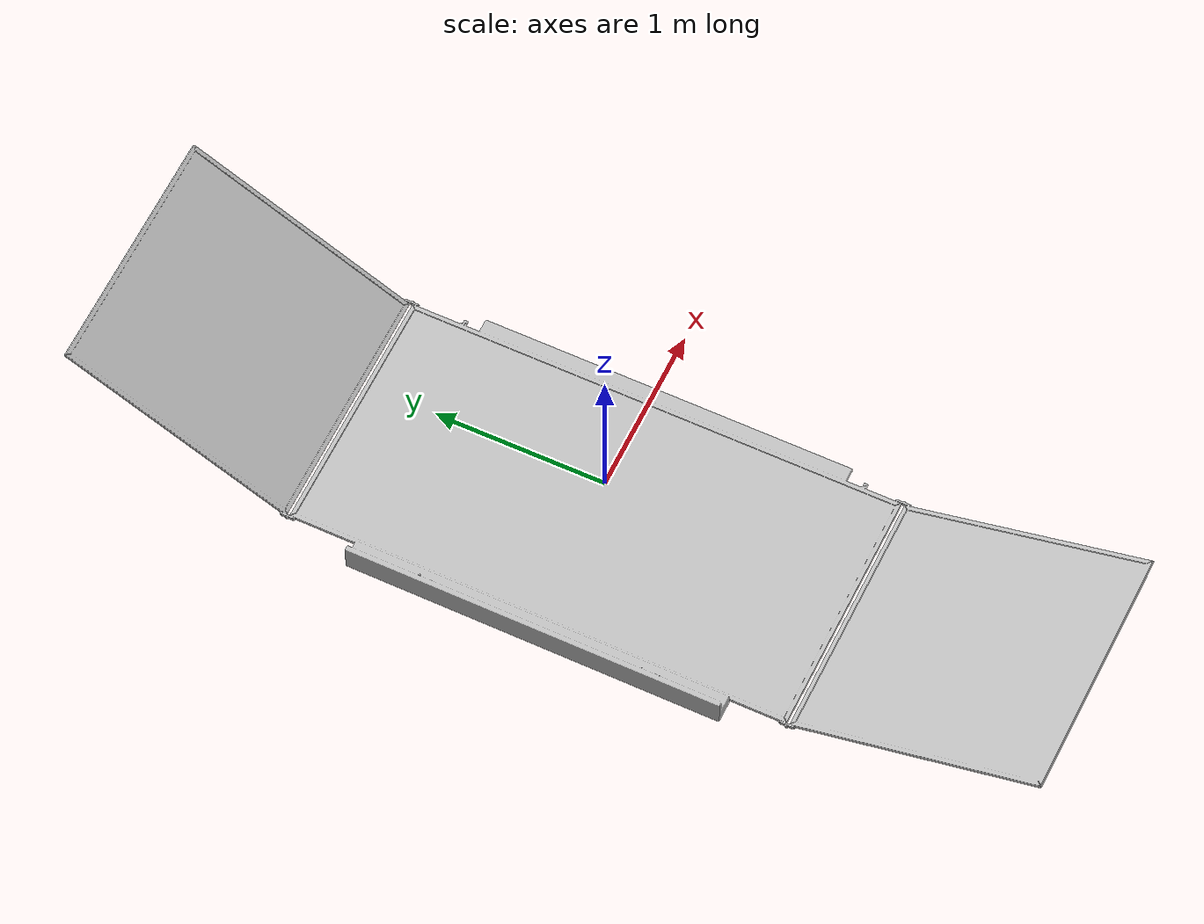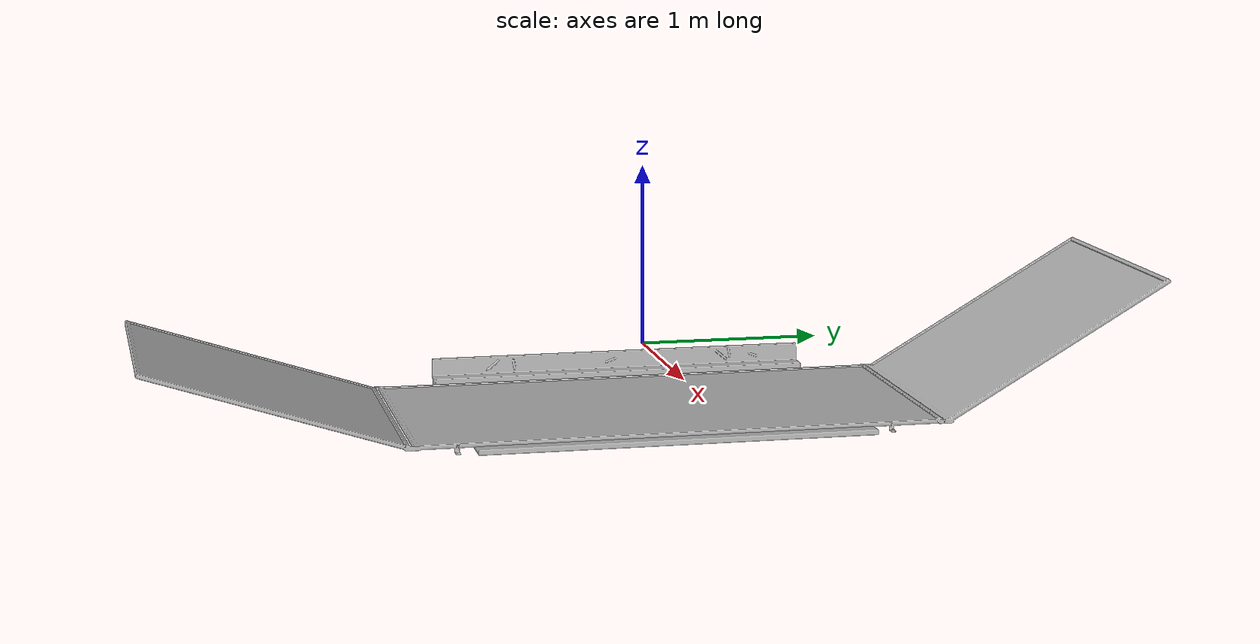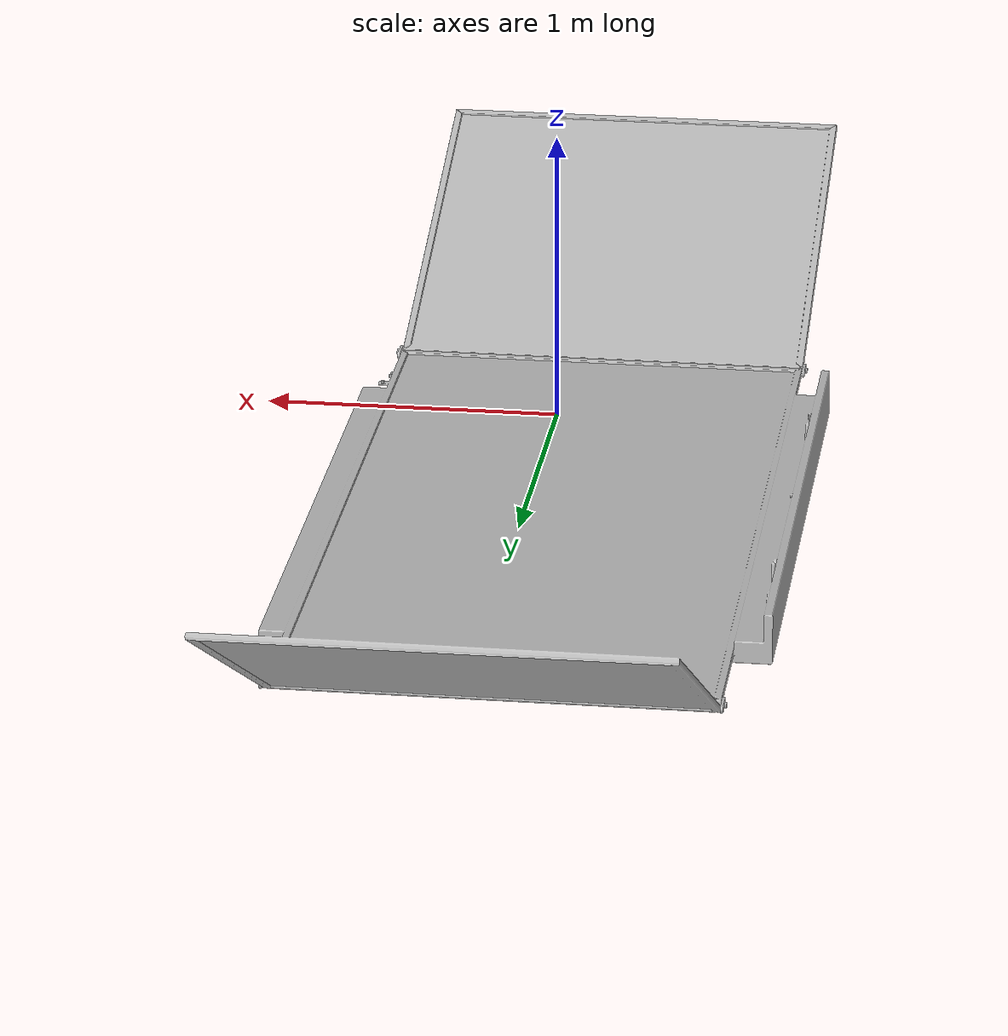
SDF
<?xml version="1.0" ?>
<sdf version="1.6">
  <model name="pizarron">
    <static>true</static>
    <link name="link">
      <collision name="collision">
        <pose>0 0 0 0 0 -1.57079632679</pose>
        <geometry>
          <mesh>
            <scale>1.7 1.7 1.7</scale>
            <uri>model://pizarron/meshes/pizarron.obj</uri>
          </mesh>
        </geometry>
      </collision>
      <visual name="visual">
        <pose>0 0 0 0 0 -1.57079632679</pose>
        <geometry>
          <mesh>
            <scale>1.7 1.7 1.7</scale>
            <uri>model://pizarron/meshes/pizarron.obj</uri>
          </mesh>
        </geometry>
      </visual>
    </link>
  </model>
</sdf>
